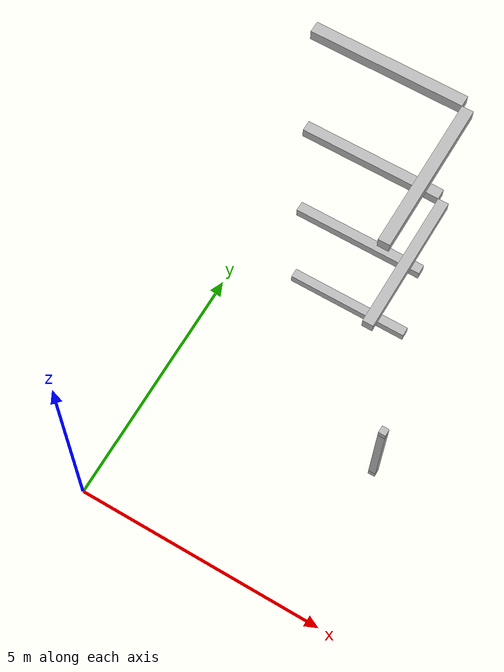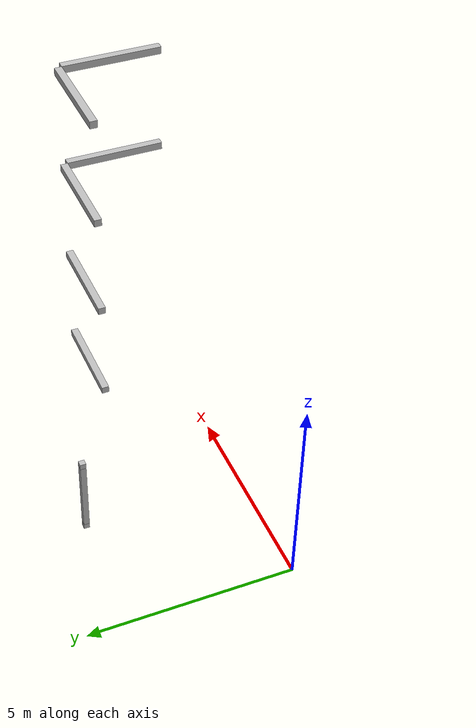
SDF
<sdf version="1.7">
 <world name="default">
  <model name="orthogonal_747_2.000.15_TS">
   <static>1</static>
   <link name="u_link_0_4_5">
    <inertial>
     <mass>1</mass>
     <inertia>
      <ixx>0.166667</ixx>
      <ixy>0</ixy>
      <ixz>0</ixz>
      <iyy>0.166667</iyy>
      <iyz>0</iyz>
      <izz>0.166667</izz>
     </inertia>
    </inertial>
    <pose>10.75 8.6 1.075 0 -0 0</pose>
    <visual name="visual_0">
     <laser_retro>722</laser_retro>
     <geometry><box><size>0.15 1e-06 0.15</size></box></geometry>
     <material>
      <script><name>Gazebo/Grey</name><uri>file://media/materials/scripts/gazebo.material</uri></script>
      <shader type="pixel"><normal_map>__default__</normal_map></shader>
      <ambient>0.678 0.498 0.659 1</ambient>
      <diffuse>0.7 0.7 0.7 1</diffuse>
      <specular>0.01 0.01 0.01 1</specular>
      <emissive>0 0 0 1</emissive>
     </material>
     <pose>0 -0.075 0 0 -0 0</pose>
     <transparency>1</transparency>
    </visual>
    <visual name="visual_1">
     <laser_retro>723</laser_retro>
     <geometry><box><size>0.15 1e-06 0.15</size></box></geometry>
     <material>
      <script><name>Gazebo/Grey</name><uri>file://media/materials/scripts/gazebo.material</uri></script>
      <shader type="pixel"><normal_map>__default__</normal_map></shader>
      <ambient>0.447 0.624 0.812 1</ambient>
      <diffuse>0.7 0.7 0.7 1</diffuse>
      <specular>0.01 0.01 0.01 1</specular>
      <emissive>0 0 0 1</emissive>
     </material>
     <pose>0 0.075 0 0 -0 0</pose>
     <transparency>1</transparency>
    </visual>
    <visual name="visual_2">
     <laser_retro>724</laser_retro>
     <geometry><box><size>0.15 0.15 1e-06</size></box></geometry>
     <material>
      <script><name>Gazebo/Grey</name><uri>file://media/materials/scripts/gazebo.material</uri></script>
      <shader type="pixel"><normal_map>__default__</normal_map></shader>
      <ambient>0.988 0.686 0.243 1</ambient>
      <diffuse>0.7 0.7 0.7 1</diffuse>
      <specular>0.01 0.01 0.01 1</specular>
      <emissive>0 0 0 1</emissive>
     </material>
     <pose>0 0 -0.075 0 -0 0</pose>
     <transparency>1</transparency>
    </visual>
    <visual name="visual_3">
     <laser_retro>725</laser_retro>
     <geometry><box><size>1e-06 0.15 0.15</size></box></geometry>
     <material>
      <script><name>Gazebo/Grey</name><uri>file://media/materials/scripts/gazebo.material</uri></script>
      <shader type="pixel"><normal_map>__default__</normal_map></shader>
      <ambient>0.988 0.914 0.31 1</ambient>
      <diffuse>0.7 0.7 0.7 1</diffuse>
      <specular>0.01 0.01 0.01 1</specular>
      <emissive>0 0 0 1</emissive>
     </material>
     <pose>0.075 0 0 0 -0 0</pose>
     <transparency>1</transparency>
    </visual>
    <visual name="visual_4">
     <laser_retro>726</laser_retro>
     <geometry><box><size>0.15 0.15 1e-06</size></box></geometry>
     <material>
      <script><name>Gazebo/Grey</name><uri>file://media/materials/scripts/gazebo.material</uri></script>
      <shader type="pixel"><normal_map>__default__</normal_map></shader>
      <ambient>0.937 0.161 0.161 1</ambient>
      <diffuse>0.7 0.7 0.7 1</diffuse>
      <specular>0.01 0.01 0.01 1</specular>
      <emissive>0 0 0 1</emissive>
     </material>
     <pose>0 0 0.075 0 -0 0</pose>
     <transparency>1</transparency>
    </visual>
    <visual name="visual_5">
     <laser_retro>727</laser_retro>
     <geometry><box><size>1e-06 0.15 0.15</size></box></geometry>
     <material>
      <script><name>Gazebo/Grey</name><uri>file://media/materials/scripts/gazebo.material</uri></script>
      <shader type="pixel"><normal_map>__default__</normal_map></shader>
      <ambient>0.541 0.886 0.204 1</ambient>
      <diffuse>0.7 0.7 0.7 1</diffuse>
      <specular>0.01 0.01 0.01 1</specular>
      <emissive>0 0 0 1</emissive>
     </material>
     <pose>-0.075 0 0 0 -0 0</pose>
     <transparency>1</transparency>
    </visual>
    <visual name="visual_texture">
     <geometry><box><size>0.149985 0.149985 0.149985</size></box></geometry>
     <material>
      <script>
       <uri>model://BASE_MODELS/simple_block_v2_textured/materials/scripts</uri>
       <uri>model://BASE_MODELS/simple_block_v2_textured/materials/textures</uri>
       <name>metal</name>
      </script>
     </material>
     <laser_retro>728</laser_retro>
    </visual>
    <collision name="collision">
     <geometry><box><size>0.15 0.15 0.15</size></box></geometry>
     <surface>
      <friction>
       <ode><mu>1</mu><mu2>1</mu2><fdir1>0 0 0</fdir1><slip1>0</slip1><slip2>0</slip2></ode>
       <torsional>
        <coefficient>1</coefficient>
        <patch_radius>0</patch_radius>
        <surface_radius>0</surface_radius>
        <use_patch_radius>1</use_patch_radius>
        <ode><slip>0</slip></ode>
       </torsional>
      </friction>
      <bounce><restitution_coefficient>0</restitution_coefficient><threshold>1e+06</threshold></bounce>
      <contact>
       <collide_without_contact>0</collide_without_contact>
       <collide_without_contact_bitmask>1</collide_without_contact_bitmask>
       <collide_bitmask>1</collide_bitmask>
       <ode>
        <soft_cfm>0</soft_cfm>
        <soft_erp>0.2</soft_erp>
        <kp>1e+13</kp>
        <kd>1</kd>
        <max_vel>0.01</max_vel>
        <min_depth>0</min_depth>
       </ode>
       <bullet>
        <split_impulse>1</split_impulse>
        <split_impulse_penetration_threshold>-0.01</split_impulse_penetration_threshold>
        <soft_cfm>0</soft_cfm>
        <soft_erp>0.2</soft_erp>
        <kp>1e+13</kp>
        <kd>1</kd>
       </bullet>
      </contact>
     </surface>
    </collision>
   </link>
   <link name="u_link_1_4_5">
    <inertial>
     <mass>1</mass>
     <inertia>
      <ixx>0.166667</ixx>
      <ixy>0</ixy>
      <ixz>0</ixz>
      <iyy>0.166667</iyy>
      <iyz>0</iyz>
      <izz>0.166667</izz>
     </inertia>
    </inertial>
    <pose>10.75 8.6 3.225 0 -0 0</pose>
    <visual name="visual_0">
     <laser_retro>1604</laser_retro>
     <geometry><box><size>0.15 1e-06 0.15</size></box></geometry>
     <material>
      <script><name>Gazebo/Grey</name><uri>file://media/materials/scripts/gazebo.material</uri></script>
      <shader type="pixel"><normal_map>__default__</normal_map></shader>
      <ambient>0.678 0.498 0.659 1</ambient>
      <diffuse>0.7 0.7 0.7 1</diffuse>
      <specular>0.01 0.01 0.01 1</specular>
      <emissive>0 0 0 1</emissive>
     </material>
     <pose>0 -0.075 0 0 -0 0</pose>
     <transparency>1</transparency>
    </visual>
    <visual name="visual_1">
     <laser_retro>1605</laser_retro>
     <geometry><box><size>0.15 1e-06 0.15</size></box></geometry>
     <material>
      <script><name>Gazebo/Grey</name><uri>file://media/materials/scripts/gazebo.material</uri></script>
      <shader type="pixel"><normal_map>__default__</normal_map></shader>
      <ambient>0.447 0.624 0.812 1</ambient>
      <diffuse>0.7 0.7 0.7 1</diffuse>
      <specular>0.01 0.01 0.01 1</specular>
      <emissive>0 0 0 1</emissive>
     </material>
     <pose>0 0.075 0 0 -0 0</pose>
     <transparency>1</transparency>
    </visual>
    <visual name="visual_2">
     <laser_retro>1606</laser_retro>
     <geometry><box><size>0.15 0.15 1e-06</size></box></geometry>
     <material>
      <script><name>Gazebo/Grey</name><uri>file://media/materials/scripts/gazebo.material</uri></script>
      <shader type="pixel"><normal_map>__default__</normal_map></shader>
      <ambient>0.988 0.686 0.243 1</ambient>
      <diffuse>0.7 0.7 0.7 1</diffuse>
      <specular>0.01 0.01 0.01 1</specular>
      <emissive>0 0 0 1</emissive>
     </material>
     <pose>0 0 -0.075 0 -0 0</pose>
     <transparency>1</transparency>
    </visual>
    <visual name="visual_3">
     <laser_retro>1607</laser_retro>
     <geometry><box><size>1e-06 0.15 0.15</size></box></geometry>
     <material>
      <script><name>Gazebo/Grey</name><uri>file://media/materials/scripts/gazebo.material</uri></script>
      <shader type="pixel"><normal_map>__default__</normal_map></shader>
      <ambient>0.988 0.914 0.31 1</ambient>
      <diffuse>0.7 0.7 0.7 1</diffuse>
      <specular>0.01 0.01 0.01 1</specular>
      <emissive>0 0 0 1</emissive>
     </material>
     <pose>0.075 0 0 0 -0 0</pose>
     <transparency>1</transparency>
    </visual>
    <visual name="visual_4">
     <laser_retro>1608</laser_retro>
     <geometry><box><size>0.15 0.15 1e-06</size></box></geometry>
     <material>
      <script><name>Gazebo/Grey</name><uri>file://media/materials/scripts/gazebo.material</uri></script>
      <shader type="pixel"><normal_map>__default__</normal_map></shader>
      <ambient>0.937 0.161 0.161 1</ambient>
      <diffuse>0.7 0.7 0.7 1</diffuse>
      <specular>0.01 0.01 0.01 1</specular>
      <emissive>0 0 0 1</emissive>
     </material>
     <pose>0 0 0.075 0 -0 0</pose>
     <transparency>1</transparency>
    </visual>
    <visual name="visual_5">
     <laser_retro>1609</laser_retro>
     <geometry><box><size>1e-06 0.15 0.15</size></box></geometry>
     <material>
      <script><name>Gazebo/Grey</name><uri>file://media/materials/scripts/gazebo.material</uri></script>
      <shader type="pixel"><normal_map>__default__</normal_map></shader>
      <ambient>0.541 0.886 0.204 1</ambient>
      <diffuse>0.7 0.7 0.7 1</diffuse>
      <specular>0.01 0.01 0.01 1</specular>
      <emissive>0 0 0 1</emissive>
     </material>
     <pose>-0.075 0 0 0 -0 0</pose>
     <transparency>1</transparency>
    </visual>
    <visual name="visual_texture">
     <geometry><box><size>0.149985 0.149985 0.149985</size></box></geometry>
     <material>
      <script>
       <uri>model://BASE_MODELS/simple_block_v2_textured/materials/scripts</uri>
       <uri>model://BASE_MODELS/simple_block_v2_textured/materials/textures</uri>
       <name>metal</name>
      </script>
     </material>
     <laser_retro>1610</laser_retro>
    </visual>
    <collision name="collision">
     <geometry><box><size>0.15 0.15 0.15</size></box></geometry>
     <surface>
      <friction>
       <ode><mu>1</mu><mu2>1</mu2><fdir1>0 0 0</fdir1><slip1>0</slip1><slip2>0</slip2></ode>
       <torsional>
        <coefficient>1</coefficient>
        <patch_radius>0</patch_radius>
        <surface_radius>0</surface_radius>
        <use_patch_radius>1</use_patch_radius>
        <ode><slip>0</slip></ode>
       </torsional>
      </friction>
      <bounce><restitution_coefficient>0</restitution_coefficient><threshold>1e+06</threshold></bounce>
      <contact>
       <collide_without_contact>0</collide_without_contact>
       <collide_without_contact_bitmask>1</collide_without_contact_bitmask>
       <collide_bitmask>1</collide_bitmask>
       <ode>
        <soft_cfm>0</soft_cfm>
        <soft_erp>0.2</soft_erp>
        <kp>1e+13</kp>
        <kd>1</kd>
        <max_vel>0.01</max_vel>
        <min_depth>0</min_depth>
       </ode>
       <bullet>
        <split_impulse>1</split_impulse>
        <split_impulse_penetration_threshold>-0.01</split_impulse_penetration_threshold>
        <soft_cfm>0</soft_cfm>
        <soft_erp>0.2</soft_erp>
        <kp>1e+13</kp>
        <kd>1</kd>
       </bullet>
      </contact>
     </surface>
    </collision>
   </link>
   <link name="z_link_1_4_5">
    <inertial>
     <mass>1</mass>
     <inertia>
      <ixx>0.166667</ixx>
      <ixy>0</ixy>
      <ixz>0</ixz>
      <iyy>0.166667</iyy>
      <iyz>0</iyz>
      <izz>0.166667</izz>
     </inertia>
    </inertial>
    <pose>10.75 8.6 2.15 0 -0 0</pose>
    <visual name="visual_0">
     <laser_retro>1611</laser_retro>
     <geometry><box><size>0.15 1e-06 2</size></box></geometry>
     <material>
      <script><name>Gazebo/Grey</name><uri>file://media/materials/scripts/gazebo.material</uri></script>
      <shader type="pixel"><normal_map>__default__</normal_map></shader>
      <ambient>0.678 0.498 0.659 1</ambient>
      <diffuse>0.7 0.7 0.7 1</diffuse>
      <specular>0.01 0.01 0.01 1</specular>
      <emissive>0 0 0 1</emissive>
     </material>
     <pose>0 -0.075 0 0 -0 0</pose>
     <transparency>1</transparency>
    </visual>
    <visual name="visual_1">
     <laser_retro>1612</laser_retro>
     <geometry><box><size>0.15 1e-06 2</size></box></geometry>
     <material>
      <script><name>Gazebo/Grey</name><uri>file://media/materials/scripts/gazebo.material</uri></script>
      <shader type="pixel"><normal_map>__default__</normal_map></shader>
      <ambient>0.447 0.624 0.812 1</ambient>
      <diffuse>0.7 0.7 0.7 1</diffuse>
      <specular>0.01 0.01 0.01 1</specular>
      <emissive>0 0 0 1</emissive>
     </material>
     <pose>0 0.075 0 0 -0 0</pose>
     <transparency>1</transparency>
    </visual>
    <visual name="visual_2">
     <laser_retro>1613</laser_retro>
     <geometry><box><size>0.15 0.15 1e-06</size></box></geometry>
     <material>
      <script><name>Gazebo/Grey</name><uri>file://media/materials/scripts/gazebo.material</uri></script>
      <shader type="pixel"><normal_map>__default__</normal_map></shader>
      <ambient>0.988 0.686 0.243 1</ambient>
      <diffuse>0.7 0.7 0.7 1</diffuse>
      <specular>0.01 0.01 0.01 1</specular>
      <emissive>0 0 0 1</emissive>
     </material>
     <pose>0 0 -1 0 -0 0</pose>
     <transparency>1</transparency>
    </visual>
    <visual name="visual_3">
     <laser_retro>1614</laser_retro>
     <geometry><box><size>1e-06 0.15 2</size></box></geometry>
     <material>
      <script><name>Gazebo/Grey</name><uri>file://media/materials/scripts/gazebo.material</uri></script>
      <shader type="pixel"><normal_map>__default__</normal_map></shader>
      <ambient>0.988 0.914 0.31 1</ambient>
      <diffuse>0.7 0.7 0.7 1</diffuse>
      <specular>0.01 0.01 0.01 1</specular>
      <emissive>0 0 0 1</emissive>
     </material>
     <pose>0.075 0 0 0 -0 0</pose>
     <transparency>1</transparency>
    </visual>
    <visual name="visual_4">
     <laser_retro>1615</laser_retro>
     <geometry><box><size>0.15 0.15 1e-06</size></box></geometry>
     <material>
      <script><name>Gazebo/Grey</name><uri>file://media/materials/scripts/gazebo.material</uri></script>
      <shader type="pixel"><normal_map>__default__</normal_map></shader>
      <ambient>0.937 0.161 0.161 1</ambient>
      <diffuse>0.7 0.7 0.7 1</diffuse>
      <specular>0.01 0.01 0.01 1</specular>
      <emissive>0 0 0 1</emissive>
     </material>
     <pose>0 0 1 0 -0 0</pose>
     <transparency>1</transparency>
    </visual>
    <visual name="visual_5">
     <laser_retro>1616</laser_retro>
     <geometry><box><size>1e-06 0.15 2</size></box></geometry>
     <material>
      <script><name>Gazebo/Grey</name><uri>file://media/materials/scripts/gazebo.material</uri></script>
      <shader type="pixel"><normal_map>__default__</normal_map></shader>
      <ambient>0.541 0.886 0.204 1</ambient>
      <diffuse>0.7 0.7 0.7 1</diffuse>
      <specular>0.01 0.01 0.01 1</specular>
      <emissive>0 0 0 1</emissive>
     </material>
     <pose>-0.075 0 0 0 -0 0</pose>
     <transparency>1</transparency>
    </visual>
    <visual name="visual_texture">
     <geometry><box><size>0.149985 0.149985 1.9998</size></box></geometry>
     <material>
      <script>
       <uri>model://BASE_MODELS/simple_block_v2_textured/materials/scripts</uri>
       <uri>model://BASE_MODELS/simple_block_v2_textured/materials/textures</uri>
       <name>metal</name>
      </script>
     </material>
     <laser_retro>1617</laser_retro>
    </visual>
    <collision name="collision">
     <geometry><box><size>0.15 0.15 2</size></box></geometry>
     <surface>
      <friction>
       <ode><mu>1</mu><mu2>1</mu2><fdir1>0 0 0</fdir1><slip1>0</slip1><slip2>0</slip2></ode>
       <torsional>
        <coefficient>1</coefficient>
        <patch_radius>0</patch_radius>
        <surface_radius>0</surface_radius>
        <use_patch_radius>1</use_patch_radius>
        <ode><slip>0</slip></ode>
       </torsional>
      </friction>
      <bounce><restitution_coefficient>0</restitution_coefficient><threshold>1e+06</threshold></bounce>
      <contact>
       <collide_without_contact>0</collide_without_contact>
       <collide_without_contact_bitmask>1</collide_without_contact_bitmask>
       <collide_bitmask>1</collide_bitmask>
       <ode>
        <soft_cfm>0</soft_cfm>
        <soft_erp>0.2</soft_erp>
        <kp>1e+13</kp>
        <kd>1</kd>
        <max_vel>0.01</max_vel>
        <min_depth>0</min_depth>
       </ode>
       <bullet>
        <split_impulse>1</split_impulse>
        <split_impulse_penetration_threshold>-0.01</split_impulse_penetration_threshold>
        <soft_cfm>0</soft_cfm>
        <soft_erp>0.2</soft_erp>
        <kp>1e+13</kp>
        <kd>1</kd>
       </bullet>
      </contact>
     </surface>
    </collision>
   </link>
   <link name="x_link_3_4_4">
    <inertial>
     <mass>1</mass>
     <inertia>
      <ixx>0.166667</ixx>
      <ixy>0</ixy>
      <ixz>0</ixz>
      <iyy>0.166667</iyy>
      <iyz>0</iyz>
      <izz>0.166667</izz>
     </inertia>
    </inertial>
    <pose>9.675 8.6 7.525 0 -0 0</pose>
    <visual name="visual_0">
     <laser_retro>3382</laser_retro>
     <geometry><box><size>2 1e-06 0.15</size></box></geometry>
     <material>
      <script><name>Gazebo/Grey</name><uri>file://media/materials/scripts/gazebo.material</uri></script>
      <shader type="pixel"><normal_map>__default__</normal_map></shader>
      <ambient>0.678 0.498 0.659 1</ambient>
      <diffuse>0.7 0.7 0.7 1</diffuse>
      <specular>0.01 0.01 0.01 1</specular>
      <emissive>0 0 0 1</emissive>
     </material>
     <pose>0 -0.075 0 0 -0 0</pose>
     <transparency>1</transparency>
    </visual>
    <visual name="visual_1">
     <laser_retro>3383</laser_retro>
     <geometry><box><size>2 1e-06 0.15</size></box></geometry>
     <material>
      <script><name>Gazebo/Grey</name><uri>file://media/materials/scripts/gazebo.material</uri></script>
      <shader type="pixel"><normal_map>__default__</normal_map></shader>
      <ambient>0.447 0.624 0.812 1</ambient>
      <diffuse>0.7 0.7 0.7 1</diffuse>
      <specular>0.01 0.01 0.01 1</specular>
      <emissive>0 0 0 1</emissive>
     </material>
     <pose>0 0.075 0 0 -0 0</pose>
     <transparency>1</transparency>
    </visual>
    <visual name="visual_2">
     <laser_retro>3384</laser_retro>
     <geometry><box><size>2 0.15 1e-06</size></box></geometry>
     <material>
      <script><name>Gazebo/Grey</name><uri>file://media/materials/scripts/gazebo.material</uri></script>
      <shader type="pixel"><normal_map>__default__</normal_map></shader>
      <ambient>0.988 0.686 0.243 1</ambient>
      <diffuse>0.7 0.7 0.7 1</diffuse>
      <specular>0.01 0.01 0.01 1</specular>
      <emissive>0 0 0 1</emissive>
     </material>
     <pose>0 0 -0.075 0 -0 0</pose>
     <transparency>1</transparency>
    </visual>
    <visual name="visual_3">
     <laser_retro>3385</laser_retro>
     <geometry><box><size>1e-06 0.15 0.15</size></box></geometry>
     <material>
      <script><name>Gazebo/Grey</name><uri>file://media/materials/scripts/gazebo.material</uri></script>
      <shader type="pixel"><normal_map>__default__</normal_map></shader>
      <ambient>0.988 0.914 0.31 1</ambient>
      <diffuse>0.7 0.7 0.7 1</diffuse>
      <specular>0.01 0.01 0.01 1</specular>
      <emissive>0 0 0 1</emissive>
     </material>
     <pose>1 0 0 0 -0 0</pose>
     <transparency>1</transparency>
    </visual>
    <visual name="visual_4">
     <laser_retro>3386</laser_retro>
     <geometry><box><size>2 0.15 1e-06</size></box></geometry>
     <material>
      <script><name>Gazebo/Grey</name><uri>file://media/materials/scripts/gazebo.material</uri></script>
      <shader type="pixel"><normal_map>__default__</normal_map></shader>
      <ambient>0.937 0.161 0.161 1</ambient>
      <diffuse>0.7 0.7 0.7 1</diffuse>
      <specular>0.01 0.01 0.01 1</specular>
      <emissive>0 0 0 1</emissive>
     </material>
     <pose>0 0 0.075 0 -0 0</pose>
     <transparency>1</transparency>
    </visual>
    <visual name="visual_5">
     <laser_retro>3387</laser_retro>
     <geometry><box><size>1e-06 0.15 0.15</size></box></geometry>
     <material>
      <script><name>Gazebo/Grey</name><uri>file://media/materials/scripts/gazebo.material</uri></script>
      <shader type="pixel"><normal_map>__default__</normal_map></shader>
      <ambient>0.541 0.886 0.204 1</ambient>
      <diffuse>0.7 0.7 0.7 1</diffuse>
      <specular>0.01 0.01 0.01 1</specular>
      <emissive>0 0 0 1</emissive>
     </material>
     <pose>-1 0 0 0 -0 0</pose>
     <transparency>1</transparency>
    </visual>
    <visual name="visual_texture">
     <geometry><box><size>1.9998 0.149985 0.149985</size></box></geometry>
     <material>
      <script>
       <uri>model://BASE_MODELS/simple_block_v2_textured/materials/scripts</uri>
       <uri>model://BASE_MODELS/simple_block_v2_textured/materials/textures</uri>
       <name>metal</name>
      </script>
     </material>
     <laser_retro>3388</laser_retro>
    </visual>
    <collision name="collision">
     <geometry><box><size>2 0.15 0.15</size></box></geometry>
     <surface>
      <friction>
       <ode><mu>1</mu><mu2>1</mu2><fdir1>0 0 0</fdir1><slip1>0</slip1><slip2>0</slip2></ode>
       <torsional>
        <coefficient>1</coefficient>
        <patch_radius>0</patch_radius>
        <surface_radius>0</surface_radius>
        <use_patch_radius>1</use_patch_radius>
        <ode><slip>0</slip></ode>
       </torsional>
      </friction>
      <bounce><restitution_coefficient>0</restitution_coefficient><threshold>1e+06</threshold></bounce>
      <contact>
       <collide_without_contact>0</collide_without_contact>
       <collide_without_contact_bitmask>1</collide_without_contact_bitmask>
       <collide_bitmask>1</collide_bitmask>
       <ode>
        <soft_cfm>0</soft_cfm>
        <soft_erp>0.2</soft_erp>
        <kp>1e+13</kp>
        <kd>1</kd>
        <max_vel>0.01</max_vel>
        <min_depth>0</min_depth>
       </ode>
       <bullet>
        <split_impulse>1</split_impulse>
        <split_impulse_penetration_threshold>-0.01</split_impulse_penetration_threshold>
        <soft_cfm>0</soft_cfm>
        <soft_erp>0.2</soft_erp>
        <kp>1e+13</kp>
        <kd>1</kd>
       </bullet>
      </contact>
     </surface>
    </collision>
   </link>
   <link name="x_link_4_4_4">
    <inertial>
     <mass>1</mass>
     <inertia>
      <ixx>0.166667</ixx>
      <ixy>0</ixy>
      <ixz>0</ixz>
      <iyy>0.166667</iyy>
      <iyz>0</iyz>
      <izz>0.166667</izz>
     </inertia>
    </inertial>
    <pose>9.675 8.6 9.675 0 -0 0</pose>
    <visual name="visual_0">
     <laser_retro>4285</laser_retro>
     <geometry><box><size>2 1e-06 0.15</size></box></geometry>
     <material>
      <script><name>Gazebo/Grey</name><uri>file://media/materials/scripts/gazebo.material</uri></script>
      <shader type="pixel"><normal_map>__default__</normal_map></shader>
      <ambient>0.678 0.498 0.659 1</ambient>
      <diffuse>0.7 0.7 0.7 1</diffuse>
      <specular>0.01 0.01 0.01 1</specular>
      <emissive>0 0 0 1</emissive>
     </material>
     <pose>0 -0.075 0 0 -0 0</pose>
     <transparency>1</transparency>
    </visual>
    <visual name="visual_1">
     <laser_retro>4286</laser_retro>
     <geometry><box><size>2 1e-06 0.15</size></box></geometry>
     <material>
      <script><name>Gazebo/Grey</name><uri>file://media/materials/scripts/gazebo.material</uri></script>
      <shader type="pixel"><normal_map>__default__</normal_map></shader>
      <ambient>0.447 0.624 0.812 1</ambient>
      <diffuse>0.7 0.7 0.7 1</diffuse>
      <specular>0.01 0.01 0.01 1</specular>
      <emissive>0 0 0 1</emissive>
     </material>
     <pose>0 0.075 0 0 -0 0</pose>
     <transparency>1</transparency>
    </visual>
    <visual name="visual_2">
     <laser_retro>4287</laser_retro>
     <geometry><box><size>2 0.15 1e-06</size></box></geometry>
     <material>
      <script><name>Gazebo/Grey</name><uri>file://media/materials/scripts/gazebo.material</uri></script>
      <shader type="pixel"><normal_map>__default__</normal_map></shader>
      <ambient>0.988 0.686 0.243 1</ambient>
      <diffuse>0.7 0.7 0.7 1</diffuse>
      <specular>0.01 0.01 0.01 1</specular>
      <emissive>0 0 0 1</emissive>
     </material>
     <pose>0 0 -0.075 0 -0 0</pose>
     <transparency>1</transparency>
    </visual>
    <visual name="visual_3">
     <laser_retro>4288</laser_retro>
     <geometry><box><size>1e-06 0.15 0.15</size></box></geometry>
     <material>
      <script><name>Gazebo/Grey</name><uri>file://media/materials/scripts/gazebo.material</uri></script>
      <shader type="pixel"><normal_map>__default__</normal_map></shader>
      <ambient>0.988 0.914 0.31 1</ambient>
      <diffuse>0.7 0.7 0.7 1</diffuse>
      <specular>0.01 0.01 0.01 1</specular>
      <emissive>0 0 0 1</emissive>
     </material>
     <pose>1 0 0 0 -0 0</pose>
     <transparency>1</transparency>
    </visual>
    <visual name="visual_4">
     <laser_retro>4289</laser_retro>
     <geometry><box><size>2 0.15 1e-06</size></box></geometry>
     <material>
      <script><name>Gazebo/Grey</name><uri>file://media/materials/scripts/gazebo.material</uri></script>
      <shader type="pixel"><normal_map>__default__</normal_map></shader>
      <ambient>0.937 0.161 0.161 1</ambient>
      <diffuse>0.7 0.7 0.7 1</diffuse>
      <specular>0.01 0.01 0.01 1</specular>
      <emissive>0 0 0 1</emissive>
     </material>
     <pose>0 0 0.075 0 -0 0</pose>
     <transparency>1</transparency>
    </visual>
    <visual name="visual_5">
     <laser_retro>4290</laser_retro>
     <geometry><box><size>1e-06 0.15 0.15</size></box></geometry>
     <material>
      <script><name>Gazebo/Grey</name><uri>file://media/materials/scripts/gazebo.material</uri></script>
      <shader type="pixel"><normal_map>__default__</normal_map></shader>
      <ambient>0.541 0.886 0.204 1</ambient>
      <diffuse>0.7 0.7 0.7 1</diffuse>
      <specular>0.01 0.01 0.01 1</specular>
      <emissive>0 0 0 1</emissive>
     </material>
     <pose>-1 0 0 0 -0 0</pose>
     <transparency>1</transparency>
    </visual>
    <visual name="visual_texture">
     <geometry><box><size>1.9998 0.149985 0.149985</size></box></geometry>
     <material>
      <script>
       <uri>model://BASE_MODELS/simple_block_v2_textured/materials/scripts</uri>
       <uri>model://BASE_MODELS/simple_block_v2_textured/materials/textures</uri>
       <name>metal</name>
      </script>
     </material>
     <laser_retro>4291</laser_retro>
    </visual>
    <collision name="collision">
     <geometry><box><size>2 0.15 0.15</size></box></geometry>
     <surface>
      <friction>
       <ode><mu>1</mu><mu2>1</mu2><fdir1>0 0 0</fdir1><slip1>0</slip1><slip2>0</slip2></ode>
       <torsional>
        <coefficient>1</coefficient>
        <patch_radius>0</patch_radius>
        <surface_radius>0</surface_radius>
        <use_patch_radius>1</use_patch_radius>
        <ode><slip>0</slip></ode>
       </torsional>
      </friction>
      <bounce><restitution_coefficient>0</restitution_coefficient><threshold>1e+06</threshold></bounce>
      <contact>
       <collide_without_contact>0</collide_without_contact>
       <collide_without_contact_bitmask>1</collide_without_contact_bitmask>
       <collide_bitmask>1</collide_bitmask>
       <ode>
        <soft_cfm>0</soft_cfm>
        <soft_erp>0.2</soft_erp>
        <kp>1e+13</kp>
        <kd>1</kd>
        <max_vel>0.01</max_vel>
        <min_depth>0</min_depth>
       </ode>
       <bullet>
        <split_impulse>1</split_impulse>
        <split_impulse_penetration_threshold>-0.01</split_impulse_penetration_threshold>
        <soft_cfm>0</soft_cfm>
        <soft_erp>0.2</soft_erp>
        <kp>1e+13</kp>
        <kd>1</kd>
       </bullet>
      </contact>
     </surface>
    </collision>
   </link>
   <link name="y_link_5_3_5">
    <inertial>
     <mass>1</mass>
     <inertia>
      <ixx>0.166667</ixx>
      <ixy>0</ixy>
      <ixz>0</ixz>
      <iyy>0.166667</iyy>
      <iyz>0</iyz>
      <izz>0.166667</izz>
     </inertia>
    </inertial>
    <pose>10.75 7.525 11.825 0 -0 0</pose>
    <visual name="visual_0">
     <laser_retro>5048</laser_retro>
     <geometry><box><size>0.15 1e-06 0.15</size></box></geometry>
     <material>
      <script><name>Gazebo/Grey</name><uri>file://media/materials/scripts/gazebo.material</uri></script>
      <shader type="pixel"><normal_map>__default__</normal_map></shader>
      <ambient>0.678 0.498 0.659 1</ambient>
      <diffuse>0.7 0.7 0.7 1</diffuse>
      <specular>0.01 0.01 0.01 1</specular>
      <emissive>0 0 0 1</emissive>
     </material>
     <pose>0 -1 0 0 -0 0</pose>
     <transparency>1</transparency>
    </visual>
    <visual name="visual_1">
     <laser_retro>5049</laser_retro>
     <geometry><box><size>0.15 1e-06 0.15</size></box></geometry>
     <material>
      <script><name>Gazebo/Grey</name><uri>file://media/materials/scripts/gazebo.material</uri></script>
      <shader type="pixel"><normal_map>__default__</normal_map></shader>
      <ambient>0.447 0.624 0.812 1</ambient>
      <diffuse>0.7 0.7 0.7 1</diffuse>
      <specular>0.01 0.01 0.01 1</specular>
      <emissive>0 0 0 1</emissive>
     </material>
     <pose>0 1 0 0 -0 0</pose>
     <transparency>1</transparency>
    </visual>
    <visual name="visual_2">
     <laser_retro>5050</laser_retro>
     <geometry><box><size>0.15 2 1e-06</size></box></geometry>
     <material>
      <script><name>Gazebo/Grey</name><uri>file://media/materials/scripts/gazebo.material</uri></script>
      <shader type="pixel"><normal_map>__default__</normal_map></shader>
      <ambient>0.988 0.686 0.243 1</ambient>
      <diffuse>0.7 0.7 0.7 1</diffuse>
      <specular>0.01 0.01 0.01 1</specular>
      <emissive>0 0 0 1</emissive>
     </material>
     <pose>0 0 -0.075 0 -0 0</pose>
     <transparency>1</transparency>
    </visual>
    <visual name="visual_3">
     <laser_retro>5051</laser_retro>
     <geometry><box><size>1e-06 2 0.15</size></box></geometry>
     <material>
      <script><name>Gazebo/Grey</name><uri>file://media/materials/scripts/gazebo.material</uri></script>
      <shader type="pixel"><normal_map>__default__</normal_map></shader>
      <ambient>0.988 0.914 0.31 1</ambient>
      <diffuse>0.7 0.7 0.7 1</diffuse>
      <specular>0.01 0.01 0.01 1</specular>
      <emissive>0 0 0 1</emissive>
     </material>
     <pose>0.075 0 0 0 -0 0</pose>
     <transparency>1</transparency>
    </visual>
    <visual name="visual_4">
     <laser_retro>5052</laser_retro>
     <geometry><box><size>0.15 2 1e-06</size></box></geometry>
     <material>
      <script><name>Gazebo/Grey</name><uri>file://media/materials/scripts/gazebo.material</uri></script>
      <shader type="pixel"><normal_map>__default__</normal_map></shader>
      <ambient>0.937 0.161 0.161 1</ambient>
      <diffuse>0.7 0.7 0.7 1</diffuse>
      <specular>0.01 0.01 0.01 1</specular>
      <emissive>0 0 0 1</emissive>
     </material>
     <pose>0 0 0.075 0 -0 0</pose>
     <transparency>1</transparency>
    </visual>
    <visual name="visual_5">
     <laser_retro>5053</laser_retro>
     <geometry><box><size>1e-06 2 0.15</size></box></geometry>
     <material>
      <script><name>Gazebo/Grey</name><uri>file://media/materials/scripts/gazebo.material</uri></script>
      <shader type="pixel"><normal_map>__default__</normal_map></shader>
      <ambient>0.541 0.886 0.204 1</ambient>
      <diffuse>0.7 0.7 0.7 1</diffuse>
      <specular>0.01 0.01 0.01 1</specular>
      <emissive>0 0 0 1</emissive>
     </material>
     <pose>-0.075 0 0 0 -0 0</pose>
     <transparency>1</transparency>
    </visual>
    <visual name="visual_texture">
     <geometry><box><size>0.149985 1.9998 0.149985</size></box></geometry>
     <material>
      <script>
       <uri>model://BASE_MODELS/simple_block_v2_textured/materials/scripts</uri>
       <uri>model://BASE_MODELS/simple_block_v2_textured/materials/textures</uri>
       <name>metal</name>
      </script>
     </material>
     <laser_retro>5054</laser_retro>
    </visual>
    <collision name="collision">
     <geometry><box><size>0.15 2 0.15</size></box></geometry>
     <surface>
      <friction>
       <ode><mu>1</mu><mu2>1</mu2><fdir1>0 0 0</fdir1><slip1>0</slip1><slip2>0</slip2></ode>
       <torsional>
        <coefficient>1</coefficient>
        <patch_radius>0</patch_radius>
        <surface_radius>0</surface_radius>
        <use_patch_radius>1</use_patch_radius>
        <ode><slip>0</slip></ode>
       </torsional>
      </friction>
      <bounce><restitution_coefficient>0</restitution_coefficient><threshold>1e+06</threshold></bounce>
      <contact>
       <collide_without_contact>0</collide_without_contact>
       <collide_without_contact_bitmask>1</collide_without_contact_bitmask>
       <collide_bitmask>1</collide_bitmask>
       <ode>
        <soft_cfm>0</soft_cfm>
        <soft_erp>0.2</soft_erp>
        <kp>1e+13</kp>
        <kd>1</kd>
        <max_vel>0.01</max_vel>
        <min_depth>0</min_depth>
       </ode>
       <bullet>
        <split_impulse>1</split_impulse>
        <split_impulse_penetration_threshold>-0.01</split_impulse_penetration_threshold>
        <soft_cfm>0</soft_cfm>
        <soft_erp>0.2</soft_erp>
        <kp>1e+13</kp>
        <kd>1</kd>
       </bullet>
      </contact>
     </surface>
    </collision>
   </link>
   <link name="x_link_5_4_4">
    <inertial>
     <mass>1</mass>
     <inertia>
      <ixx>0.166667</ixx>
      <ixy>0</ixy>
      <ixz>0</ixz>
      <iyy>0.166667</iyy>
      <iyz>0</iyz>
      <izz>0.166667</izz>
     </inertia>
    </inertial>
    <pose>9.675 8.6 11.825 0 -0 0</pose>
    <visual name="visual_0">
     <laser_retro>5188</laser_retro>
     <geometry><box><size>2 1e-06 0.15</size></box></geometry>
     <material>
      <script><name>Gazebo/Grey</name><uri>file://media/materials/scripts/gazebo.material</uri></script>
      <shader type="pixel"><normal_map>__default__</normal_map></shader>
      <ambient>0.678 0.498 0.659 1</ambient>
      <diffuse>0.7 0.7 0.7 1</diffuse>
      <specular>0.01 0.01 0.01 1</specular>
      <emissive>0 0 0 1</emissive>
     </material>
     <pose>0 -0.075 0 0 -0 0</pose>
     <transparency>1</transparency>
    </visual>
    <visual name="visual_1">
     <laser_retro>5189</laser_retro>
     <geometry><box><size>2 1e-06 0.15</size></box></geometry>
     <material>
      <script><name>Gazebo/Grey</name><uri>file://media/materials/scripts/gazebo.material</uri></script>
      <shader type="pixel"><normal_map>__default__</normal_map></shader>
      <ambient>0.447 0.624 0.812 1</ambient>
      <diffuse>0.7 0.7 0.7 1</diffuse>
      <specular>0.01 0.01 0.01 1</specular>
      <emissive>0 0 0 1</emissive>
     </material>
     <pose>0 0.075 0 0 -0 0</pose>
     <transparency>1</transparency>
    </visual>
    <visual name="visual_2">
     <laser_retro>5190</laser_retro>
     <geometry><box><size>2 0.15 1e-06</size></box></geometry>
     <material>
      <script><name>Gazebo/Grey</name><uri>file://media/materials/scripts/gazebo.material</uri></script>
      <shader type="pixel"><normal_map>__default__</normal_map></shader>
      <ambient>0.988 0.686 0.243 1</ambient>
      <diffuse>0.7 0.7 0.7 1</diffuse>
      <specular>0.01 0.01 0.01 1</specular>
      <emissive>0 0 0 1</emissive>
     </material>
     <pose>0 0 -0.075 0 -0 0</pose>
     <transparency>1</transparency>
    </visual>
    <visual name="visual_3">
     <laser_retro>5191</laser_retro>
     <geometry><box><size>1e-06 0.15 0.15</size></box></geometry>
     <material>
      <script><name>Gazebo/Grey</name><uri>file://media/materials/scripts/gazebo.material</uri></script>
      <shader type="pixel"><normal_map>__default__</normal_map></shader>
      <ambient>0.988 0.914 0.31 1</ambient>
      <diffuse>0.7 0.7 0.7 1</diffuse>
      <specular>0.01 0.01 0.01 1</specular>
      <emissive>0 0 0 1</emissive>
     </material>
     <pose>1 0 0 0 -0 0</pose>
     <transparency>1</transparency>
    </visual>
    <visual name="visual_4">
     <laser_retro>5192</laser_retro>
     <geometry><box><size>2 0.15 1e-06</size></box></geometry>
     <material>
      <script><name>Gazebo/Grey</name><uri>file://media/materials/scripts/gazebo.material</uri></script>
      <shader type="pixel"><normal_map>__default__</normal_map></shader>
      <ambient>0.937 0.161 0.161 1</ambient>
      <diffuse>0.7 0.7 0.7 1</diffuse>
      <specular>0.01 0.01 0.01 1</specular>
      <emissive>0 0 0 1</emissive>
     </material>
     <pose>0 0 0.075 0 -0 0</pose>
     <transparency>1</transparency>
    </visual>
    <visual name="visual_5">
     <laser_retro>5193</laser_retro>
     <geometry><box><size>1e-06 0.15 0.15</size></box></geometry>
     <material>
      <script><name>Gazebo/Grey</name><uri>file://media/materials/scripts/gazebo.material</uri></script>
      <shader type="pixel"><normal_map>__default__</normal_map></shader>
      <ambient>0.541 0.886 0.204 1</ambient>
      <diffuse>0.7 0.7 0.7 1</diffuse>
      <specular>0.01 0.01 0.01 1</specular>
      <emissive>0 0 0 1</emissive>
     </material>
     <pose>-1 0 0 0 -0 0</pose>
     <transparency>1</transparency>
    </visual>
    <visual name="visual_texture">
     <geometry><box><size>1.9998 0.149985 0.149985</size></box></geometry>
     <material>
      <script>
       <uri>model://BASE_MODELS/simple_block_v2_textured/materials/scripts</uri>
       <uri>model://BASE_MODELS/simple_block_v2_textured/materials/textures</uri>
       <name>metal</name>
      </script>
     </material>
     <laser_retro>5194</laser_retro>
    </visual>
    <collision name="collision">
     <geometry><box><size>2 0.15 0.15</size></box></geometry>
     <surface>
      <friction>
       <ode><mu>1</mu><mu2>1</mu2><fdir1>0 0 0</fdir1><slip1>0</slip1><slip2>0</slip2></ode>
       <torsional>
        <coefficient>1</coefficient>
        <patch_radius>0</patch_radius>
        <surface_radius>0</surface_radius>
        <use_patch_radius>1</use_patch_radius>
        <ode><slip>0</slip></ode>
       </torsional>
      </friction>
      <bounce><restitution_coefficient>0</restitution_coefficient><threshold>1e+06</threshold></bounce>
      <contact>
       <collide_without_contact>0</collide_without_contact>
       <collide_without_contact_bitmask>1</collide_without_contact_bitmask>
       <collide_bitmask>1</collide_bitmask>
       <ode>
        <soft_cfm>0</soft_cfm>
        <soft_erp>0.2</soft_erp>
        <kp>1e+13</kp>
        <kd>1</kd>
        <max_vel>0.01</max_vel>
        <min_depth>0</min_depth>
       </ode>
       <bullet>
        <split_impulse>1</split_impulse>
        <split_impulse_penetration_threshold>-0.01</split_impulse_penetration_threshold>
        <soft_cfm>0</soft_cfm>
        <soft_erp>0.2</soft_erp>
        <kp>1e+13</kp>
        <kd>1</kd>
       </bullet>
      </contact>
     </surface>
    </collision>
   </link>
   <link name="y_link_6_3_5">
    <inertial>
     <mass>1</mass>
     <inertia>
      <ixx>0.166667</ixx>
      <ixy>0</ixy>
      <ixz>0</ixz>
      <iyy>0.166667</iyy>
      <iyz>0</iyz>
      <izz>0.166667</izz>
     </inertia>
    </inertial>
    <pose>10.75 7.525 13.975 0 -0 0</pose>
    <visual name="visual_0">
     <laser_retro>6063</laser_retro>
     <geometry><box><size>0.15 1e-06 0.15</size></box></geometry>
     <material>
      <script><name>Gazebo/Grey</name><uri>file://media/materials/scripts/gazebo.material</uri></script>
      <shader type="pixel"><normal_map>__default__</normal_map></shader>
      <ambient>0.678 0.498 0.659 1</ambient>
      <diffuse>0.7 0.7 0.7 1</diffuse>
      <specular>0.01 0.01 0.01 1</specular>
      <emissive>0 0 0 1</emissive>
     </material>
     <pose>0 -1 0 0 -0 0</pose>
     <transparency>1</transparency>
    </visual>
    <visual name="visual_1">
     <laser_retro>6064</laser_retro>
     <geometry><box><size>0.15 1e-06 0.15</size></box></geometry>
     <material>
      <script><name>Gazebo/Grey</name><uri>file://media/materials/scripts/gazebo.material</uri></script>
      <shader type="pixel"><normal_map>__default__</normal_map></shader>
      <ambient>0.447 0.624 0.812 1</ambient>
      <diffuse>0.7 0.7 0.7 1</diffuse>
      <specular>0.01 0.01 0.01 1</specular>
      <emissive>0 0 0 1</emissive>
     </material>
     <pose>0 1 0 0 -0 0</pose>
     <transparency>1</transparency>
    </visual>
    <visual name="visual_2">
     <laser_retro>6065</laser_retro>
     <geometry><box><size>0.15 2 1e-06</size></box></geometry>
     <material>
      <script><name>Gazebo/Grey</name><uri>file://media/materials/scripts/gazebo.material</uri></script>
      <shader type="pixel"><normal_map>__default__</normal_map></shader>
      <ambient>0.988 0.686 0.243 1</ambient>
      <diffuse>0.7 0.7 0.7 1</diffuse>
      <specular>0.01 0.01 0.01 1</specular>
      <emissive>0 0 0 1</emissive>
     </material>
     <pose>0 0 -0.075 0 -0 0</pose>
     <transparency>1</transparency>
    </visual>
    <visual name="visual_3">
     <laser_retro>6066</laser_retro>
     <geometry><box><size>1e-06 2 0.15</size></box></geometry>
     <material>
      <script><name>Gazebo/Grey</name><uri>file://media/materials/scripts/gazebo.material</uri></script>
      <shader type="pixel"><normal_map>__default__</normal_map></shader>
      <ambient>0.988 0.914 0.31 1</ambient>
      <diffuse>0.7 0.7 0.7 1</diffuse>
      <specular>0.01 0.01 0.01 1</specular>
      <emissive>0 0 0 1</emissive>
     </material>
     <pose>0.075 0 0 0 -0 0</pose>
     <transparency>1</transparency>
    </visual>
    <visual name="visual_4">
     <laser_retro>6067</laser_retro>
     <geometry><box><size>0.15 2 1e-06</size></box></geometry>
     <material>
      <script><name>Gazebo/Grey</name><uri>file://media/materials/scripts/gazebo.material</uri></script>
      <shader type="pixel"><normal_map>__default__</normal_map></shader>
      <ambient>0.937 0.161 0.161 1</ambient>
      <diffuse>0.7 0.7 0.7 1</diffuse>
      <specular>0.01 0.01 0.01 1</specular>
      <emissive>0 0 0 1</emissive>
     </material>
     <pose>0 0 0.075 0 -0 0</pose>
     <transparency>1</transparency>
    </visual>
    <visual name="visual_5">
     <laser_retro>6068</laser_retro>
     <geometry><box><size>1e-06 2 0.15</size></box></geometry>
     <material>
      <script><name>Gazebo/Grey</name><uri>file://media/materials/scripts/gazebo.material</uri></script>
      <shader type="pixel"><normal_map>__default__</normal_map></shader>
      <ambient>0.541 0.886 0.204 1</ambient>
      <diffuse>0.7 0.7 0.7 1</diffuse>
      <specular>0.01 0.01 0.01 1</specular>
      <emissive>0 0 0 1</emissive>
     </material>
     <pose>-0.075 0 0 0 -0 0</pose>
     <transparency>1</transparency>
    </visual>
    <visual name="visual_texture">
     <geometry><box><size>0.149985 1.9998 0.149985</size></box></geometry>
     <material>
      <script>
       <uri>model://BASE_MODELS/simple_block_v2_textured/materials/scripts</uri>
       <uri>model://BASE_MODELS/simple_block_v2_textured/materials/textures</uri>
       <name>metal</name>
      </script>
     </material>
     <laser_retro>6069</laser_retro>
    </visual>
    <collision name="collision">
     <geometry><box><size>0.15 2 0.15</size></box></geometry>
     <surface>
      <friction>
       <ode><mu>1</mu><mu2>1</mu2><fdir1>0 0 0</fdir1><slip1>0</slip1><slip2>0</slip2></ode>
       <torsional>
        <coefficient>1</coefficient>
        <patch_radius>0</patch_radius>
        <surface_radius>0</surface_radius>
        <use_patch_radius>1</use_patch_radius>
        <ode><slip>0</slip></ode>
       </torsional>
      </friction>
      <bounce><restitution_coefficient>0</restitution_coefficient><threshold>1e+06</threshold></bounce>
      <contact>
       <collide_without_contact>0</collide_without_contact>
       <collide_without_contact_bitmask>1</collide_without_contact_bitmask>
       <collide_bitmask>1</collide_bitmask>
       <ode>
        <soft_cfm>0</soft_cfm>
        <soft_erp>0.2</soft_erp>
        <kp>1e+13</kp>
        <kd>1</kd>
        <max_vel>0.01</max_vel>
        <min_depth>0</min_depth>
       </ode>
       <bullet>
        <split_impulse>1</split_impulse>
        <split_impulse_penetration_threshold>-0.01</split_impulse_penetration_threshold>
        <soft_cfm>0</soft_cfm>
        <soft_erp>0.2</soft_erp>
        <kp>1e+13</kp>
        <kd>1</kd>
       </bullet>
      </contact>
     </surface>
    </collision>
   </link>
   <link name="x_link_6_4_4">
    <inertial>
     <mass>1</mass>
     <inertia>
      <ixx>0.166667</ixx>
      <ixy>0</ixy>
      <ixz>0</ixz>
      <iyy>0.166667</iyy>
      <iyz>0</iyz>
      <izz>0.166667</izz>
     </inertia>
    </inertial>
    <pose>9.675 8.6 13.975 0 -0 0</pose>
    <visual name="visual_0">
     <laser_retro>6217</laser_retro>
     <geometry><box><size>2 1e-06 0.15</size></box></geometry>
     <material>
      <script><name>Gazebo/Grey</name><uri>file://media/materials/scripts/gazebo.material</uri></script>
      <shader type="pixel"><normal_map>__default__</normal_map></shader>
      <ambient>0.678 0.498 0.659 1</ambient>
      <diffuse>0.7 0.7 0.7 1</diffuse>
      <specular>0.01 0.01 0.01 1</specular>
      <emissive>0 0 0 1</emissive>
     </material>
     <pose>0 -0.075 0 0 -0 0</pose>
     <transparency>1</transparency>
    </visual>
    <visual name="visual_1">
     <laser_retro>6218</laser_retro>
     <geometry><box><size>2 1e-06 0.15</size></box></geometry>
     <material>
      <script><name>Gazebo/Grey</name><uri>file://media/materials/scripts/gazebo.material</uri></script>
      <shader type="pixel"><normal_map>__default__</normal_map></shader>
      <ambient>0.447 0.624 0.812 1</ambient>
      <diffuse>0.7 0.7 0.7 1</diffuse>
      <specular>0.01 0.01 0.01 1</specular>
      <emissive>0 0 0 1</emissive>
     </material>
     <pose>0 0.075 0 0 -0 0</pose>
     <transparency>1</transparency>
    </visual>
    <visual name="visual_2">
     <laser_retro>6219</laser_retro>
     <geometry><box><size>2 0.15 1e-06</size></box></geometry>
     <material>
      <script><name>Gazebo/Grey</name><uri>file://media/materials/scripts/gazebo.material</uri></script>
      <shader type="pixel"><normal_map>__default__</normal_map></shader>
      <ambient>0.988 0.686 0.243 1</ambient>
      <diffuse>0.7 0.7 0.7 1</diffuse>
      <specular>0.01 0.01 0.01 1</specular>
      <emissive>0 0 0 1</emissive>
     </material>
     <pose>0 0 -0.075 0 -0 0</pose>
     <transparency>1</transparency>
    </visual>
    <visual name="visual_3">
     <laser_retro>6220</laser_retro>
     <geometry><box><size>1e-06 0.15 0.15</size></box></geometry>
     <material>
      <script><name>Gazebo/Grey</name><uri>file://media/materials/scripts/gazebo.material</uri></script>
      <shader type="pixel"><normal_map>__default__</normal_map></shader>
      <ambient>0.988 0.914 0.31 1</ambient>
      <diffuse>0.7 0.7 0.7 1</diffuse>
      <specular>0.01 0.01 0.01 1</specular>
      <emissive>0 0 0 1</emissive>
     </material>
     <pose>1 0 0 0 -0 0</pose>
     <transparency>1</transparency>
    </visual>
    <visual name="visual_4">
     <laser_retro>6221</laser_retro>
     <geometry><box><size>2 0.15 1e-06</size></box></geometry>
     <material>
      <script><name>Gazebo/Grey</name><uri>file://media/materials/scripts/gazebo.material</uri></script>
      <shader type="pixel"><normal_map>__default__</normal_map></shader>
      <ambient>0.937 0.161 0.161 1</ambient>
      <diffuse>0.7 0.7 0.7 1</diffuse>
      <specular>0.01 0.01 0.01 1</specular>
      <emissive>0 0 0 1</emissive>
     </material>
     <pose>0 0 0.075 0 -0 0</pose>
     <transparency>1</transparency>
    </visual>
    <visual name="visual_5">
     <laser_retro>6222</laser_retro>
     <geometry><box><size>1e-06 0.15 0.15</size></box></geometry>
     <material>
      <script><name>Gazebo/Grey</name><uri>file://media/materials/scripts/gazebo.material</uri></script>
      <shader type="pixel"><normal_map>__default__</normal_map></shader>
      <ambient>0.541 0.886 0.204 1</ambient>
      <diffuse>0.7 0.7 0.7 1</diffuse>
      <specular>0.01 0.01 0.01 1</specular>
      <emissive>0 0 0 1</emissive>
     </material>
     <pose>-1 0 0 0 -0 0</pose>
     <transparency>1</transparency>
    </visual>
    <visual name="visual_texture">
     <geometry><box><size>1.9998 0.149985 0.149985</size></box></geometry>
     <material>
      <script>
       <uri>model://BASE_MODELS/simple_block_v2_textured/materials/scripts</uri>
       <uri>model://BASE_MODELS/simple_block_v2_textured/materials/textures</uri>
       <name>metal</name>
      </script>
     </material>
     <laser_retro>6223</laser_retro>
    </visual>
    <collision name="collision">
     <geometry><box><size>2 0.15 0.15</size></box></geometry>
     <surface>
      <friction>
       <ode><mu>1</mu><mu2>1</mu2><fdir1>0 0 0</fdir1><slip1>0</slip1><slip2>0</slip2></ode>
       <torsional>
        <coefficient>1</coefficient>
        <patch_radius>0</patch_radius>
        <surface_radius>0</surface_radius>
        <use_patch_radius>1</use_patch_radius>
        <ode><slip>0</slip></ode>
       </torsional>
      </friction>
      <bounce><restitution_coefficient>0</restitution_coefficient><threshold>1e+06</threshold></bounce>
      <contact>
       <collide_without_contact>0</collide_without_contact>
       <collide_without_contact_bitmask>1</collide_without_contact_bitmask>
       <collide_bitmask>1</collide_bitmask>
       <ode>
        <soft_cfm>0</soft_cfm>
        <soft_erp>0.2</soft_erp>
        <kp>1e+13</kp>
        <kd>1</kd>
        <max_vel>0.01</max_vel>
        <min_depth>0</min_depth>
       </ode>
       <bullet>
        <split_impulse>1</split_impulse>
        <split_impulse_penetration_threshold>-0.01</split_impulse_penetration_threshold>
        <soft_cfm>0</soft_cfm>
        <soft_erp>0.2</soft_erp>
        <kp>1e+13</kp>
        <kd>1</kd>
       </bullet>
      </contact>
     </surface>
    </collision>
   </link>
   <pose>-6.47624 -5 -2.5 0 -0 0</pose>
  </model>
 </world>
</sdf>
